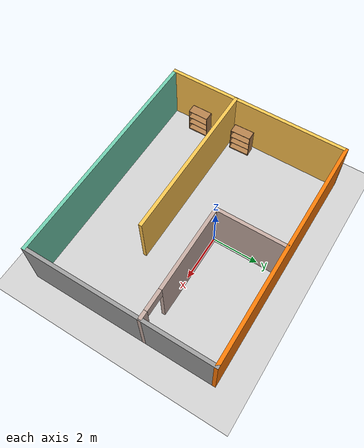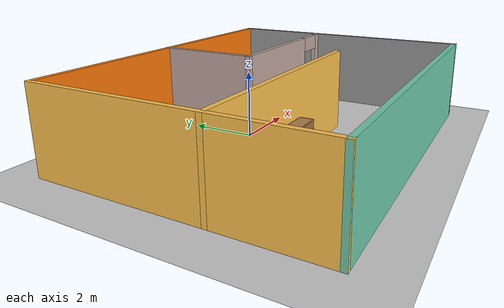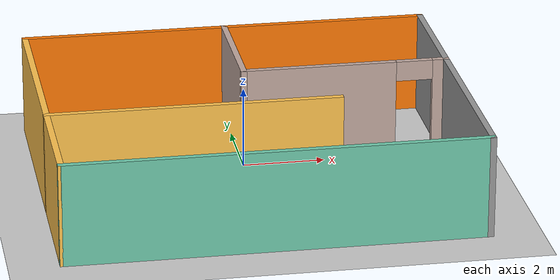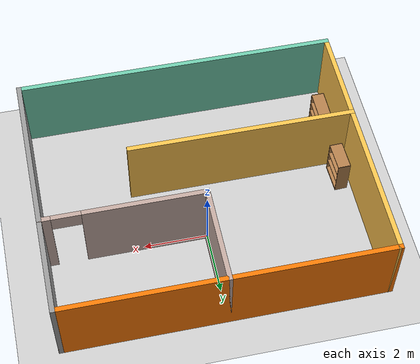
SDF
<sdf version="1.6">
 <world name="default">
  <light name="sun" type="directional">
   <pose>0 0 10 0 -0 0</pose>
   <diffuse>0.8 0.8 0.8 1</diffuse>
   <specular>0.2 0.2 0.2 1</specular>
   <attenuation>
    <range>1000</range>
    <constant>0.9</constant>
    <linear>0.01</linear>
    <quadratic>0.001</quadratic>
   </attenuation>
   <direction>-0.5 0.1 -0.9</direction>
  </light>
  <model name="ground_plane">
   <static>1</static>
   <link name="link">
    <collision name="collision">
     <geometry><plane><normal>0 0 1</normal><size>100 100</size></plane></geometry>
     <surface><friction><ode><mu>100</mu><mu2>50</mu2></ode></friction></surface>
    </collision>
    <visual name="visual">
     <cast_shadows>0</cast_shadows>
     <geometry><plane><normal>0 0 1</normal><size>100 100</size></plane></geometry>
     <material>
      <script><uri>file://media/materials/scripts/gazebo.material</uri><name>Gazebo/Grey</name></script>
     </material>
    </visual>
   </link>
  </model>
  <gravity>0 0 -9.8</gravity>
  <magnetic_field>6e-06 2.3e-05 -4.2e-05</magnetic_field>
  <atmosphere type="adiabatic"/>
  <physics name="default_physics" default="0" type="ode">
   <max_step_size>0.001</max_step_size>
   <real_time_factor>1</real_time_factor>
   <real_time_update_rate>1000</real_time_update_rate>
  </physics>
  <scene><ambient>0.4 0.4 0.4 1</ambient><background>0.7 0.7 0.7 1</background><shadows>1</shadows></scene>
  <spherical_coordinates>
   <surface_model>EARTH_WGS84</surface_model>
   <latitude_deg>0</latitude_deg>
   <longitude_deg>0</longitude_deg>
   <elevation>0</elevation>
   <heading_deg>0</heading_deg>
  </spherical_coordinates>
  <model name="my_building_p6">
   <pose>0 -1 0 0 -0 0</pose>
   <link name="Wall_0">
    <collision name="Wall_0_Collision">
     <geometry><box><size>10.15 0.15 2.5</size></box></geometry>
     <pose>0 0 1.25 0 -0 0</pose>
    </collision>
    <visual name="Wall_0_Visual">
     <pose>0 0 1.25 0 -0 0</pose>
     <geometry><box><size>10.15 0.15 2.5</size></box></geometry>
     <material>
      <script><uri>file://media/materials/scripts/gazebo.material</uri><name>Gazebo/Grey</name></script>
      <ambient>0.435294 0.796078 0.67451 1</ambient>
     </material>
     <meta><layer>0</layer></meta>
    </visual>
    <pose>0 -4 0 0 -0 0</pose>
   </link>
   <link name="Wall_18">
    <pose>2.5 1 0 0 -0 3.14159</pose>
    <visual name="Wall_18_Visual_0">
     <pose>-2.36813 0 1.25 0 -0 0</pose>
     <geometry><box><size>0.413742 0.15 2.5</size></box></geometry>
     <material>
      <script><uri>file://media/materials/scripts/gazebo.material</uri><name>Gazebo/Grey</name></script>
      <ambient>0.760784 0.662745 0.627451 1</ambient>
     </material>
     <meta><layer>0</layer></meta>
    </visual>
    <collision name="Wall_18_Collision_0">
     <geometry><box><size>0.413742 0.15 2.5</size></box></geometry>
     <pose>-2.36813 0 1.25 0 -0 0</pose>
    </collision>
    <visual name="Wall_18_Visual_1">
     <pose>0.656871 0 1.25 0 -0 0</pose>
     <geometry><box><size>3.83626 0.15 2.5</size></box></geometry>
     <material>
      <script><uri>file://media/materials/scripts/gazebo.material</uri><name>Gazebo/Grey</name></script>
      <ambient>0.760784 0.662745 0.627451 1</ambient>
     </material>
     <meta><layer>0</layer></meta>
    </visual>
    <collision name="Wall_18_Collision_1">
     <geometry><box><size>3.83626 0.15 2.5</size></box></geometry>
     <pose>0.656871 0 1.25 0 -0 0</pose>
    </collision>
    <visual name="Wall_18_Visual_2">
     <pose>-1.71126 0 2.25 0 -0 0</pose>
     <geometry><box><size>0.9 0.15 0.5</size></box></geometry>
     <material>
      <script><uri>file://media/materials/scripts/gazebo.material</uri><name>Gazebo/Grey</name></script>
      <ambient>0.760784 0.662745 0.627451 1</ambient>
     </material>
     <meta><layer>0</layer></meta>
    </visual>
    <collision name="Wall_18_Collision_2">
     <geometry><box><size>0.9 0.15 0.5</size></box></geometry>
     <pose>-1.71126 0 2.25 0 -0 0</pose>
    </collision>
   </link>
   <link name="Wall_2">
    <collision name="Wall_2_Collision">
     <geometry><box><size>8.15 0.15 2.5</size></box></geometry>
     <pose>0 0 1.25 0 -0 0</pose>
    </collision>
    <visual name="Wall_2_Visual">
     <pose>0 0 1.25 0 -0 0</pose>
     <geometry><box><size>8.15 0.15 2.5</size></box></geometry>
     <material>
      <script><uri>file://media/materials/scripts/gazebo.material</uri><name>Gazebo/Grey</name></script>
      <ambient>1 0.764706 0.305882 1</ambient>
     </material>
     <meta><layer>0</layer></meta>
    </visual>
    <pose>-5 0 0 0 -0 1.5708</pose>
   </link>
   <link name="Wall_20">
    <collision name="Wall_20_Collision">
     <geometry><box><size>3.15 0.15 2.5</size></box></geometry>
     <pose>0 0 1.25 0 -0 0</pose>
    </collision>
    <visual name="Wall_20_Visual">
     <pose>0 0 1.25 0 -0 0</pose>
     <geometry><box><size>3.15 0.15 2.5</size></box></geometry>
     <material>
      <script><uri>file://media/materials/scripts/gazebo.material</uri><name>Gazebo/Grey</name></script>
      <ambient>0.760784 0.662745 0.627451 1</ambient>
     </material>
     <meta><layer>0</layer></meta>
    </visual>
    <pose>0 2.5 0 0 -0 1.5708</pose>
   </link>
   <link name="Wall_4">
    <collision name="Wall_4_Collision">
     <geometry><box><size>8.15 0.15 2.5</size></box></geometry>
     <pose>0 0 1.25 0 -0 0</pose>
    </collision>
    <visual name="Wall_4_Visual">
     <pose>0 0 1.25 0 -0 0</pose>
     <geometry><box><size>8.15 0.15 2.5</size></box></geometry>
     <material>
      <script><uri>file://media/materials/scripts/gazebo.material</uri><name>Gazebo/Grey</name></script>
      <ambient>1 1 1 1</ambient>
     </material>
     <meta><layer>0</layer></meta>
    </visual>
    <pose>5 0 0 0 -0 1.5708</pose>
   </link>
   <link name="Wall_6">
    <collision name="Wall_6_Collision">
     <geometry><box><size>10.15 0.15 2.5</size></box></geometry>
     <pose>0 0 1.25 0 -0 0</pose>
    </collision>
    <visual name="Wall_6_Visual">
     <pose>0 0 1.25 0 -0 0</pose>
     <geometry><box><size>10.15 0.15 2.5</size></box></geometry>
     <material>
      <script><uri>file://media/materials/scripts/gazebo.material</uri><name>Gazebo/Grey</name></script>
      <ambient>0.996078 0.47451 0.0196078 1</ambient>
     </material>
     <meta><layer>0</layer></meta>
    </visual>
    <pose>0 4 0 0 -0 0</pose>
   </link>
   <link name="Wall_8">
    <collision name="Wall_8_Collision">
     <geometry><box><size>7.15 0.15 2.5</size></box></geometry>
     <pose>0 0 1.25 0 -0 0</pose>
    </collision>
    <visual name="Wall_8_Visual">
     <pose>0 0 1.25 0 -0 0</pose>
     <geometry><box><size>7.15 0.15 2.5</size></box></geometry>
     <material>
      <script><uri>file://media/materials/scripts/gazebo.material</uri><name>Gazebo/Grey</name></script>
      <ambient>1 0.764706 0.305882 1</ambient>
     </material>
     <meta><layer>0</layer></meta>
    </visual>
    <pose>-1.5 -1 0 0 -0 0</pose>
   </link>
   <static>1</static>
  </model>
  <model name="bookshelf">
   <static>1</static>
   <link name="link">
    <inertial><mass>1</mass></inertial>
    <collision name="back">
     <pose>0 0.005 0.6 0 -0 0</pose>
     <geometry><box><size>0.9 0.01 1.2</size></box></geometry>
    </collision>
    <visual name="visual1">
     <pose>0 0.005 0.6 0 -0 0</pose>
     <geometry><box><size>0.9 0.01 1.2</size></box></geometry>
     <material>
      <script><uri>file://media/materials/scripts/gazebo.material</uri><name>Gazebo/Wood</name></script>
     </material>
    </visual>
    <collision name="left_side">
     <pose>0.45 -0.195 0.6 0 -0 0</pose>
     <geometry><box><size>0.02 0.4 1.2</size></box></geometry>
    </collision>
    <visual name="visual2">
     <pose>0.45 -0.195 0.6 0 -0 0</pose>
     <geometry><box><size>0.02 0.4 1.2</size></box></geometry>
     <material>
      <script><uri>file://media/materials/scripts/gazebo.material</uri><name>Gazebo/Wood</name></script>
     </material>
    </visual>
    <collision name="right_side">
     <pose>-0.45 -0.195 0.6 0 -0 0</pose>
     <geometry><box><size>0.02 0.4 1.2</size></box></geometry>
    </collision>
    <visual name="visual3">
     <pose>-0.45 -0.195 0.6 0 -0 0</pose>
     <geometry><box><size>0.02 0.4 1.2</size></box></geometry>
     <material>
      <script><uri>file://media/materials/scripts/gazebo.material</uri><name>Gazebo/Wood</name></script>
     </material>
    </visual>
    <collision name="bottom">
     <pose>0 -0.195 0.03 0 -0 0</pose>
     <geometry><box><size>0.88 0.4 0.06</size></box></geometry>
    </collision>
    <visual name="visual4">
     <pose>0 -0.195 0.03 0 -0 0</pose>
     <geometry><box><size>0.88 0.4 0.06</size></box></geometry>
     <material>
      <script><uri>file://media/materials/scripts/gazebo.material</uri><name>Gazebo/Wood</name></script>
     </material>
    </visual>
    <collision name="top">
     <pose>0 -0.195 1.19 0 -0 0</pose>
     <geometry><box><size>0.88 0.4 0.02</size></box></geometry>
    </collision>
    <visual name="visual5">
     <pose>0 -0.195 1.19 0 -0 0</pose>
     <geometry><box><size>0.88 0.4 0.02</size></box></geometry>
     <material>
      <script><uri>file://media/materials/scripts/gazebo.material</uri><name>Gazebo/Wood</name></script>
     </material>
    </visual>
    <collision name="low_shelf">
     <pose>0 -0.195 0.43 0 -0 0</pose>
     <geometry><box><size>0.88 0.4 0.02</size></box></geometry>
    </collision>
    <visual name="visual6">
     <pose>0 -0.195 0.43 0 -0 0</pose>
     <geometry><box><size>0.88 0.4 0.02</size></box></geometry>
     <material>
      <script><uri>file://media/materials/scripts/gazebo.material</uri><name>Gazebo/Wood</name></script>
     </material>
    </visual>
    <collision name="high_shelf">
     <pose>0 -0.195 0.8 0 -0 0</pose>
     <geometry><box><size>0.88 0.4 0.02</size></box></geometry>
    </collision>
    <visual name="visual7">
     <pose>0 -0.195 0.8 0 -0 0</pose>
     <geometry><box><size>0.88 0.4 0.02</size></box></geometry>
     <material>
      <script><uri>file://media/materials/scripts/gazebo.material</uri><name>Gazebo/Wood</name></script>
     </material>
    </visual>
   </link>
   <pose>-4.72554 -3.44395 0 0 -0 1.57332</pose>
  </model>
  <model name="bookshelf_clone">
   <static>1</static>
   <link name="link">
    <inertial><mass>1</mass></inertial>
    <collision name="back">
     <pose>0 0.005 0.6 0 -0 0</pose>
     <geometry><box><size>0.9 0.01 1.2</size></box></geometry>
    </collision>
    <visual name="visual1">
     <pose>0 0.005 0.6 0 -0 0</pose>
     <geometry><box><size>0.9 0.01 1.2</size></box></geometry>
     <material>
      <script><uri>file://media/materials/scripts/gazebo.material</uri><name>Gazebo/Wood</name></script>
     </material>
    </visual>
    <collision name="left_side">
     <pose>0.45 -0.195 0.6 0 -0 0</pose>
     <geometry><box><size>0.02 0.4 1.2</size></box></geometry>
    </collision>
    <visual name="visual2">
     <pose>0.45 -0.195 0.6 0 -0 0</pose>
     <geometry><box><size>0.02 0.4 1.2</size></box></geometry>
     <material>
      <script><uri>file://media/materials/scripts/gazebo.material</uri><name>Gazebo/Wood</name></script>
     </material>
    </visual>
    <collision name="right_side">
     <pose>-0.45 -0.195 0.6 0 -0 0</pose>
     <geometry><box><size>0.02 0.4 1.2</size></box></geometry>
    </collision>
    <visual name="visual3">
     <pose>-0.45 -0.195 0.6 0 -0 0</pose>
     <geometry><box><size>0.02 0.4 1.2</size></box></geometry>
     <material>
      <script><uri>file://media/materials/scripts/gazebo.material</uri><name>Gazebo/Wood</name></script>
     </material>
    </visual>
    <collision name="bottom">
     <pose>0 -0.195 0.03 0 -0 0</pose>
     <geometry><box><size>0.88 0.4 0.06</size></box></geometry>
    </collision>
    <visual name="visual4">
     <pose>0 -0.195 0.03 0 -0 0</pose>
     <geometry><box><size>0.88 0.4 0.06</size></box></geometry>
     <material>
      <script><uri>file://media/materials/scripts/gazebo.material</uri><name>Gazebo/Wood</name></script>
     </material>
    </visual>
    <collision name="top">
     <pose>0 -0.195 1.19 0 -0 0</pose>
     <geometry><box><size>0.88 0.4 0.02</size></box></geometry>
    </collision>
    <visual name="visual5">
     <pose>0 -0.195 1.19 0 -0 0</pose>
     <geometry><box><size>0.88 0.4 0.02</size></box></geometry>
     <material>
      <script><uri>file://media/materials/scripts/gazebo.material</uri><name>Gazebo/Wood</name></script>
     </material>
    </visual>
    <collision name="low_shelf">
     <pose>0 -0.195 0.43 0 -0 0</pose>
     <geometry><box><size>0.88 0.4 0.02</size></box></geometry>
    </collision>
    <visual name="visual6">
     <pose>0 -0.195 0.43 0 -0 0</pose>
     <geometry><box><size>0.88 0.4 0.02</size></box></geometry>
     <material>
      <script><uri>file://media/materials/scripts/gazebo.material</uri><name>Gazebo/Wood</name></script>
     </material>
    </visual>
    <collision name="high_shelf">
     <pose>0 -0.195 0.8 0 -0 0</pose>
     <geometry><box><size>0.88 0.4 0.02</size></box></geometry>
    </collision>
    <visual name="visual7">
     <pose>0 -0.195 0.8 0 -0 0</pose>
     <geometry><box><size>0.88 0.4 0.02</size></box></geometry>
     <material>
      <script><uri>file://media/materials/scripts/gazebo.material</uri><name>Gazebo/Wood</name></script>
     </material>
    </visual>
   </link>
   <pose>-1.35554 -2.13451 0 0 0 -0.011002</pose>
  </model>
  <model name="bookshelf_clone_clone">
   <static>1</static>
   <link name="link">
    <inertial><mass>1</mass></inertial>
    <collision name="back">
     <pose>0 0.005 0.6 0 -0 0</pose>
     <geometry><box><size>0.9 0.01 1.2</size></box></geometry>
    </collision>
    <visual name="visual1">
     <pose>0 0.005 0.6 0 -0 0</pose>
     <geometry><box><size>0.9 0.01 1.2</size></box></geometry>
     <material>
      <script><uri>file://media/materials/scripts/gazebo.material</uri><name>Gazebo/Wood</name></script>
     </material>
    </visual>
    <collision name="left_side">
     <pose>0.45 -0.195 0.6 0 -0 0</pose>
     <geometry><box><size>0.02 0.4 1.2</size></box></geometry>
    </collision>
    <visual name="visual2">
     <pose>0.45 -0.195 0.6 0 -0 0</pose>
     <geometry><box><size>0.02 0.4 1.2</size></box></geometry>
     <material>
      <script><uri>file://media/materials/scripts/gazebo.material</uri><name>Gazebo/Wood</name></script>
     </material>
    </visual>
    <collision name="right_side">
     <pose>-0.45 -0.195 0.6 0 -0 0</pose>
     <geometry><box><size>0.02 0.4 1.2</size></box></geometry>
    </collision>
    <visual name="visual3">
     <pose>-0.45 -0.195 0.6 0 -0 0</pose>
     <geometry><box><size>0.02 0.4 1.2</size></box></geometry>
     <material>
      <script><uri>file://media/materials/scripts/gazebo.material</uri><name>Gazebo/Wood</name></script>
     </material>
    </visual>
    <collision name="bottom">
     <pose>0 -0.195 0.03 0 -0 0</pose>
     <geometry><box><size>0.88 0.4 0.06</size></box></geometry>
    </collision>
    <visual name="visual4">
     <pose>0 -0.195 0.03 0 -0 0</pose>
     <geometry><box><size>0.88 0.4 0.06</size></box></geometry>
     <material>
      <script><uri>file://media/materials/scripts/gazebo.material</uri><name>Gazebo/Wood</name></script>
     </material>
    </visual>
    <collision name="top">
     <pose>0 -0.195 1.19 0 -0 0</pose>
     <geometry><box><size>0.88 0.4 0.02</size></box></geometry>
    </collision>
    <visual name="visual5">
     <pose>0 -0.195 1.19 0 -0 0</pose>
     <geometry><box><size>0.88 0.4 0.02</size></box></geometry>
     <material>
      <script><uri>file://media/materials/scripts/gazebo.material</uri><name>Gazebo/Wood</name></script>
     </material>
    </visual>
    <collision name="low_shelf">
     <pose>0 -0.195 0.43 0 -0 0</pose>
     <geometry><box><size>0.88 0.4 0.02</size></box></geometry>
    </collision>
    <visual name="visual6">
     <pose>0 -0.195 0.43 0 -0 0</pose>
     <geometry><box><size>0.88 0.4 0.02</size></box></geometry>
     <material>
      <script><uri>file://media/materials/scripts/gazebo.material</uri><name>Gazebo/Wood</name></script>
     </material>
    </visual>
    <collision name="high_shelf">
     <pose>0 -0.195 0.8 0 -0 0</pose>
     <geometry><box><size>0.88 0.4 0.02</size></box></geometry>
    </collision>
    <visual name="visual7">
     <pose>0 -0.195 0.8 0 -0 0</pose>
     <geometry><box><size>0.88 0.4 0.02</size></box></geometry>
     <material>
      <script><uri>file://media/materials/scripts/gazebo.material</uri><name>Gazebo/Wood</name></script>
     </material>
    </visual>
   </link>
   <pose>-4.76419 -1.34216 0 0 -0 1.60196</pose>
  </model>
 </world>
</sdf>
